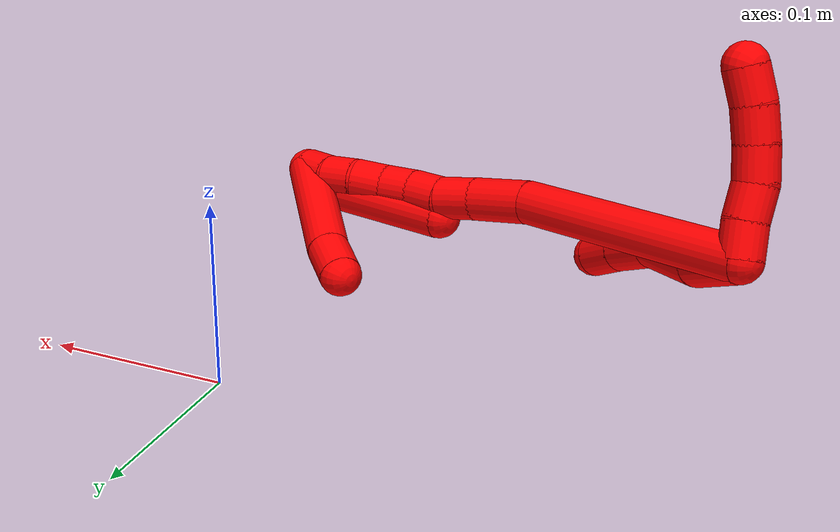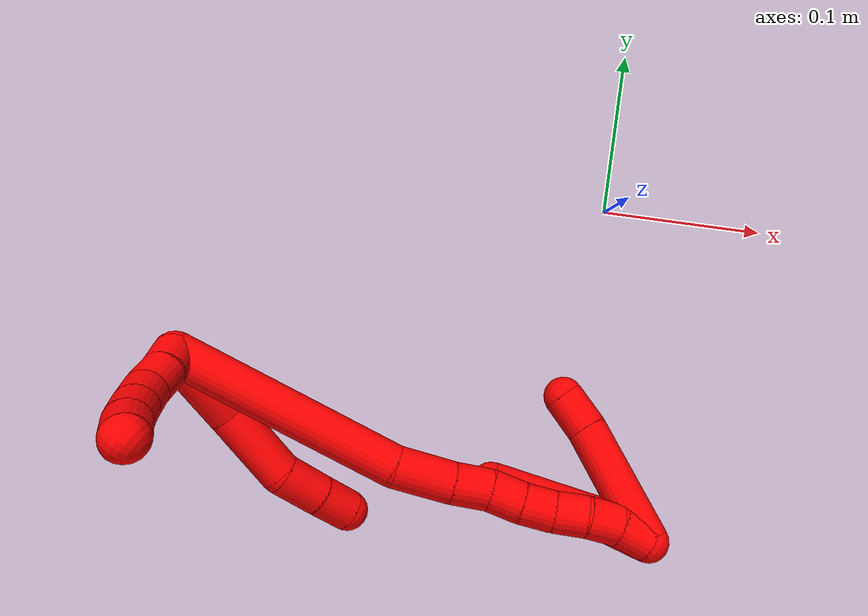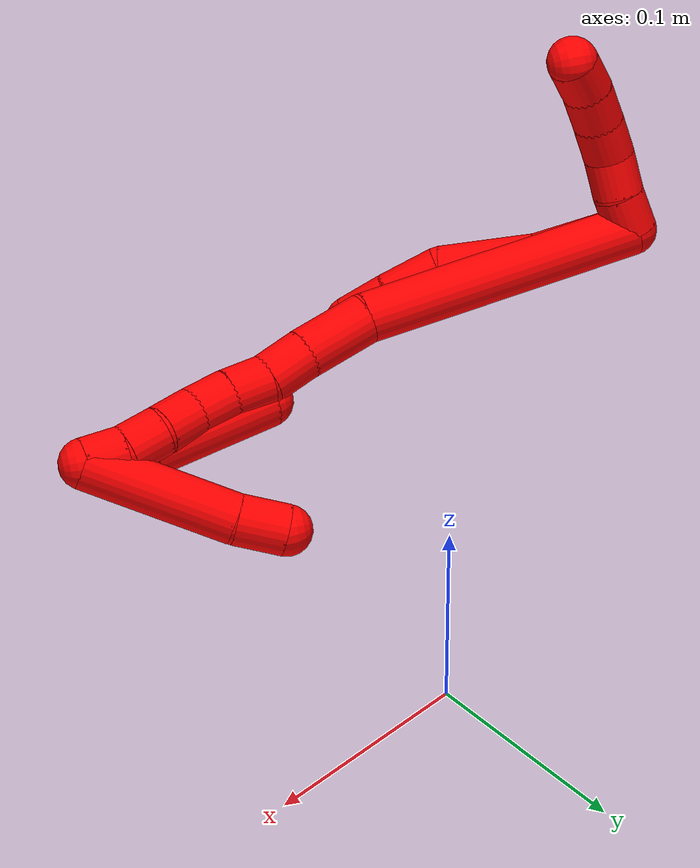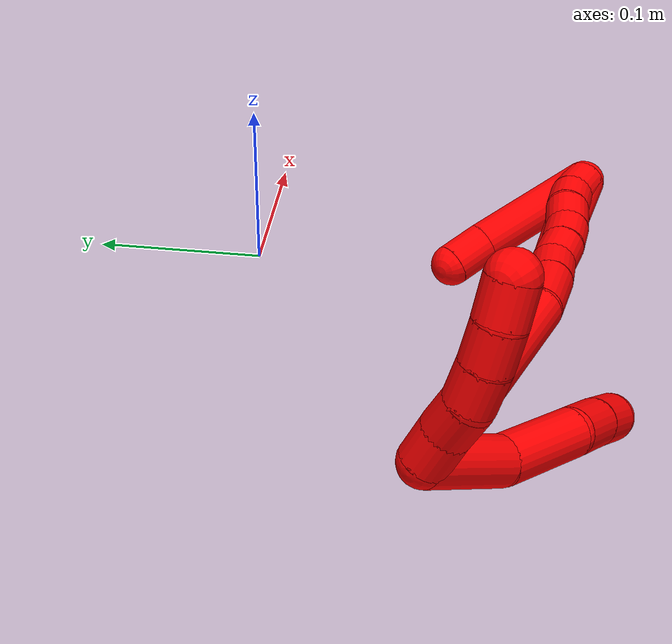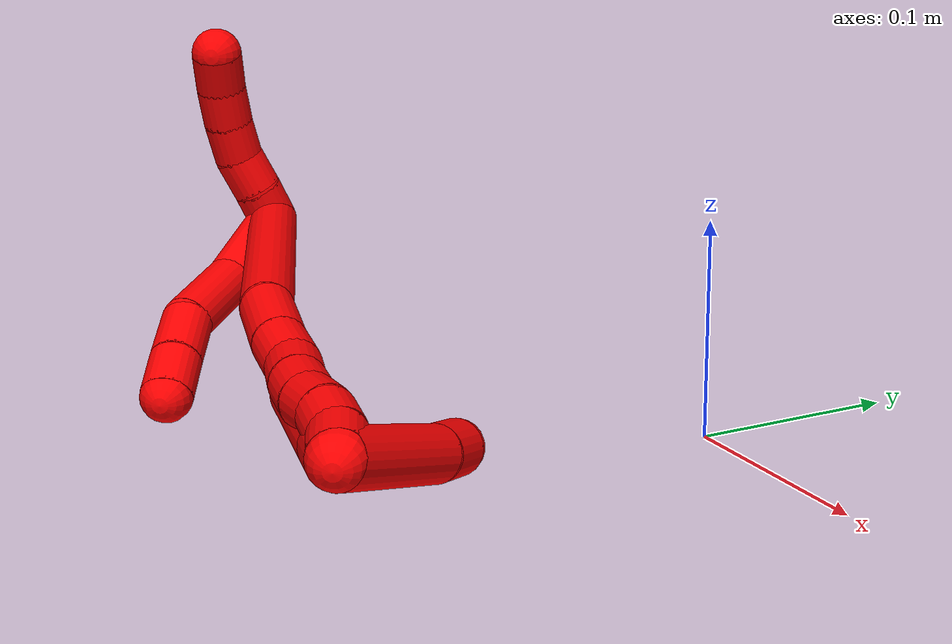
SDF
<sdf version="1.7">
 <world name="default">
  <model name="2">
   <static>0</static>
   <link name="2">
    <collision name="collision-cylinder-e_1_2_8">
     <pose>-0.012496 0.001239 -0.021786 -3.08479 -0.520089 2.92886</pose>
     <geometry><cylinder><radius>0.0125</radius><length>0.050291</length></cylinder></geometry>
     <surface>
      <friction><ode><mu>1.16</mu><mu2>1.16</mu2><slip1>0</slip1><slip2>0</slip2></ode></friction>
      <contact><ode><kp>1e+06</kp><kd>1</kd><max_vel>0</max_vel><min_depth>0.001</min_depth></ode></contact>
     </surface>
    </collision>
    <visual name="visual-cylinder-e_1_2_8">
     <pose>-0.012496 0.001239 -0.021786 -3.08479 -0.520089 2.92886</pose>
     <geometry><cylinder><radius>0.0125</radius><length>0.050291</length></cylinder></geometry>
     <material><ambient>1 0 0 1</ambient></material>
    </visual>
    <collision name="collision-cylinder-e_2_8_9">
     <pose>-0.031151 0.000311 -0.066778 3.04848 -0.258321 -2.45281</pose>
     <geometry><cylinder><radius>0.0125</radius><length>0.048216</length></cylinder></geometry>
     <surface>
      <friction><ode><mu>1.16</mu><mu2>1.16</mu2><slip1>0</slip1><slip2>0</slip2></ode></friction>
      <contact><ode><kp>1e+06</kp><kd>1</kd><max_vel>0</max_vel><min_depth>0.001</min_depth></ode></contact>
     </surface>
    </collision>
    <visual name="visual-cylinder-e_2_8_9">
     <pose>-0.031151 0.000311 -0.066778 3.04848 -0.258321 -2.45281</pose>
     <geometry><cylinder><radius>0.0125</radius><length>0.048216</length></cylinder></geometry>
     <material><ambient>1 0 0 1</ambient></material>
    </visual>
    <collision name="collision-cylinder-e_3_9_10">
     <pose>-0.041061 0.001758 -0.103139 -2.87342 -0.26833 1.57137</pose>
     <geometry><cylinder><radius>0.0125</radius><length>0.028295</length></cylinder></geometry>
     <surface>
      <friction><ode><mu>1.16</mu><mu2>1.16</mu2><slip1>0</slip1><slip2>0</slip2></ode></friction>
      <contact><ode><kp>1e+06</kp><kd>1</kd><max_vel>0</max_vel><min_depth>0.001</min_depth></ode></contact>
     </surface>
    </collision>
    <visual name="visual-cylinder-e_3_9_10">
     <pose>-0.041061 0.001758 -0.103139 -2.87342 -0.26833 1.57137</pose>
     <geometry><cylinder><radius>0.0125</radius><length>0.028295</length></cylinder></geometry>
     <material><ambient>1 0 0 1</ambient></material>
    </visual>
    <collision name="collision-cylinder-e_4_10_6">
     <pose>-0.048323 0.008775 -0.126811 -2.82875 -0.30757 1.55353</pose>
     <geometry><cylinder><radius>0.0125</radius><length>0.023198</length></cylinder></geometry>
     <surface>
      <friction><ode><mu>1.16</mu><mu2>1.16</mu2><slip1>0</slip1><slip2>0</slip2></ode></friction>
      <contact><ode><kp>1e+06</kp><kd>1</kd><max_vel>0</max_vel><min_depth>0.001</min_depth></ode></contact>
     </surface>
    </collision>
    <visual name="visual-cylinder-e_4_10_6">
     <pose>-0.048323 0.008775 -0.126811 -2.82875 -0.30757 1.55353</pose>
     <geometry><cylinder><radius>0.0125</radius><length>0.023198</length></cylinder></geometry>
     <material><ambient>1 0 0 1</ambient></material>
    </visual>
    <collision name="collision-cylinder-e_1_2_11">
     <pose>0.004374 -0.008739 -0.002122 1.80904 0.452714 0.569912</pose>
     <geometry><cylinder><radius>0.0125</radius><length>0.02</length></cylinder></geometry>
     <surface>
      <friction><ode><mu>1.16</mu><mu2>1.16</mu2><slip1>0</slip1><slip2>0</slip2></ode></friction>
      <contact><ode><kp>1e+06</kp><kd>1</kd><max_vel>0</max_vel><min_depth>0.001</min_depth></ode></contact>
     </surface>
    </collision>
    <visual name="visual-cylinder-e_1_2_11">
     <pose>0.004374 -0.008739 -0.002122 1.80904 0.452714 0.569912</pose>
     <geometry><cylinder><radius>0.0125</radius><length>0.02</length></cylinder></geometry>
     <material><ambient>1 0 0 1</ambient></material>
    </visual>
    <collision name="collision-cylinder-e_2_11_12">
     <pose>0.012543 -0.026673 -0.005266 1.68139 0.38923 0.433504</pose>
     <geometry><cylinder><radius>0.0125</radius><length>0.02</length></cylinder></geometry>
     <surface>
      <friction><ode><mu>1.16</mu><mu2>1.16</mu2><slip1>0</slip1><slip2>0</slip2></ode></friction>
      <contact><ode><kp>1e+06</kp><kd>1</kd><max_vel>0</max_vel><min_depth>0.001</min_depth></ode></contact>
     </surface>
    </collision>
    <visual name="visual-cylinder-e_2_11_12">
     <pose>0.012543 -0.026673 -0.005266 1.68139 0.38923 0.433504</pose>
     <geometry><cylinder><radius>0.0125</radius><length>0.02</length></cylinder></geometry>
     <material><ambient>1 0 0 1</ambient></material>
    </visual>
    <collision name="collision-cylinder-e_3_12_13">
     <pose>0.022259 -0.043671 -0.0083 1.82335 0.633763 0.800864</pose>
     <geometry><cylinder><radius>0.0125</radius><length>0.02</length></cylinder></geometry>
     <surface>
      <friction><ode><mu>1.16</mu><mu2>1.16</mu2><slip1>0</slip1><slip2>0</slip2></ode></friction>
      <contact><ode><kp>1e+06</kp><kd>1</kd><max_vel>0</max_vel><min_depth>0.001</min_depth></ode></contact>
     </surface>
    </collision>
    <visual name="visual-cylinder-e_3_12_13">
     <pose>0.022259 -0.043671 -0.0083 1.82335 0.633763 0.800864</pose>
     <geometry><cylinder><radius>0.0125</radius><length>0.02</length></cylinder></geometry>
     <material><ambient>1 0 0 1</ambient></material>
    </visual>
    <collision name="collision-cylinder-e_4_13_14">
     <pose>0.034772 -0.058623 -0.012647 1.88626 0.719516 0.956526</pose>
     <geometry><cylinder><radius>0.0125</radius><length>0.02</length></cylinder></geometry>
     <surface>
      <friction><ode><mu>1.16</mu><mu2>1.16</mu2><slip1>0</slip1><slip2>0</slip2></ode></friction>
      <contact><ode><kp>1e+06</kp><kd>1</kd><max_vel>0</max_vel><min_depth>0.001</min_depth></ode></contact>
     </surface>
    </collision>
    <visual name="visual-cylinder-e_4_13_14">
     <pose>0.034772 -0.058623 -0.012647 1.88626 0.719516 0.956526</pose>
     <geometry><cylinder><radius>0.0125</radius><length>0.02</length></cylinder></geometry>
     <material><ambient>1 0 0 1</ambient></material>
    </visual>
    <collision name="collision-cylinder-e_5_14_5">
     <pose>0.048414 -0.072029 -0.018318 2.06089 0.782725 1.20505</pose>
     <geometry><cylinder><radius>0.0125</radius><length>0.02</length></cylinder></geometry>
     <surface>
      <friction><ode><mu>1.16</mu><mu2>1.16</mu2><slip1>0</slip1><slip2>0</slip2></ode></friction>
      <contact><ode><kp>1e+06</kp><kd>1</kd><max_vel>0</max_vel><min_depth>0.001</min_depth></ode></contact>
     </surface>
    </collision>
    <visual name="visual-cylinder-e_5_14_5">
     <pose>0.048414 -0.072029 -0.018318 2.06089 0.782725 1.20505</pose>
     <geometry><cylinder><radius>0.0125</radius><length>0.02</length></cylinder></geometry>
     <material><ambient>1 0 0 1</ambient></material>
    </visual>
    <collision name="collision-cylinder-e_1_2_15">
     <pose>0.007282 0.009302 -0.069509 -3.00856 0.103469 -1.3215</pose>
     <geometry><cylinder><radius>0.0125</radius><length>0.141011</length></cylinder></geometry>
     <surface>
      <friction><ode><mu>1.16</mu><mu2>1.16</mu2><slip1>0</slip1><slip2>0</slip2></ode></friction>
      <contact><ode><kp>1e+06</kp><kd>1</kd><max_vel>0</max_vel><min_depth>0.001</min_depth></ode></contact>
     </surface>
    </collision>
    <visual name="visual-cylinder-e_1_2_15">
     <pose>0.007282 0.009302 -0.069509 -3.00856 0.103469 -1.3215</pose>
     <geometry><cylinder><radius>0.0125</radius><length>0.141011</length></cylinder></geometry>
     <material><ambient>1 0 0 1</ambient></material>
    </visual>
    <collision name="collision-cylinder-e_2_15_16">
     <pose>0.016962 0.0244 -0.155517 -2.80379 0.136274 -0.761328</pose>
     <geometry><cylinder><radius>0.0125</radius><length>0.035303</length></cylinder></geometry>
     <surface>
      <friction><ode><mu>1.16</mu><mu2>1.16</mu2><slip1>0</slip1><slip2>0</slip2></ode></friction>
      <contact><ode><kp>1e+06</kp><kd>1</kd><max_vel>0</max_vel><min_depth>0.001</min_depth></ode></contact>
     </surface>
    </collision>
    <visual name="visual-cylinder-e_2_15_16">
     <pose>0.016962 0.0244 -0.155517 -2.80379 0.136274 -0.761328</pose>
     <geometry><cylinder><radius>0.0125</radius><length>0.035303</length></cylinder></geometry>
     <material><ambient>1 0 0 1</ambient></material>
    </visual>
    <collision name="collision-cylinder-e_3_16_17">
     <pose>0.021616 0.034688 -0.182412 -2.73368 0.196644 -0.890001</pose>
     <geometry><cylinder><radius>0.0125</radius><length>0.023095</length></cylinder></geometry>
     <surface>
      <friction><ode><mu>1.16</mu><mu2>1.16</mu2><slip1>0</slip1><slip2>0</slip2></ode></friction>
      <contact><ode><kp>1e+06</kp><kd>1</kd><max_vel>0</max_vel><min_depth>0.001</min_depth></ode></contact>
     </surface>
    </collision>
    <visual name="visual-cylinder-e_3_16_17">
     <pose>0.021616 0.034688 -0.182412 -2.73368 0.196644 -0.890001</pose>
     <geometry><cylinder><radius>0.0125</radius><length>0.023095</length></cylinder></geometry>
     <material><ambient>1 0 0 1</ambient></material>
    </visual>
    <collision name="collision-cylinder-e_4_17_18">
     <pose>0.025809 0.04101 -0.202582 -2.95662 0.192348 -1.61014</pose>
     <geometry><cylinder><radius>0.0125</radius><length>0.020261</length></cylinder></geometry>
     <surface>
      <friction><ode><mu>1.16</mu><mu2>1.16</mu2><slip1>0</slip1><slip2>0</slip2></ode></friction>
      <contact><ode><kp>1e+06</kp><kd>1</kd><max_vel>0</max_vel><min_depth>0.001</min_depth></ode></contact>
     </surface>
    </collision>
    <visual name="visual-cylinder-e_4_17_18">
     <pose>0.025809 0.04101 -0.202582 -2.95662 0.192348 -1.61014</pose>
     <geometry><cylinder><radius>0.0125</radius><length>0.020261</length></cylinder></geometry>
     <material><ambient>1 0 0 1</ambient></material>
    </visual>
    <collision name="collision-cylinder-e_5_18_19">
     <pose>0.030273 0.045621 -0.221656 -2.85085 0.254724 -1.43728</pose>
     <geometry><cylinder><radius>0.0125</radius><length>0.020061</length></cylinder></geometry>
     <surface>
      <friction><ode><mu>1.16</mu><mu2>1.16</mu2><slip1>0</slip1><slip2>0</slip2></ode></friction>
      <contact><ode><kp>1e+06</kp><kd>1</kd><max_vel>0</max_vel><min_depth>0.001</min_depth></ode></contact>
     </surface>
    </collision>
    <visual name="visual-cylinder-e_5_18_19">
     <pose>0.030273 0.045621 -0.221656 -2.85085 0.254724 -1.43728</pose>
     <geometry><cylinder><radius>0.0125</radius><length>0.020061</length></cylinder></geometry>
     <material><ambient>1 0 0 1</ambient></material>
    </visual>
    <collision name="collision-cylinder-e_6_19_20">
     <pose>0.036789 0.051502 -0.239714 -2.80159 0.405516 -1.75018</pose>
     <geometry><cylinder><radius>0.0125</radius><length>0.02022</length></cylinder></geometry>
     <surface>
      <friction><ode><mu>1.16</mu><mu2>1.16</mu2><slip1>0</slip1><slip2>0</slip2></ode></friction>
      <contact><ode><kp>1e+06</kp><kd>1</kd><max_vel>0</max_vel><min_depth>0.001</min_depth></ode></contact>
     </surface>
    </collision>
    <visual name="visual-cylinder-e_6_19_20">
     <pose>0.036789 0.051502 -0.239714 -2.80159 0.405516 -1.75018</pose>
     <geometry><cylinder><radius>0.0125</radius><length>0.02022</length></cylinder></geometry>
     <material><ambient>1 0 0 1</ambient></material>
    </visual>
    <collision name="collision-cylinder-e_7_20_21">
     <pose>0.042914 0.057653 -0.257767 -2.8242 0.215011 -1.18659</pose>
     <geometry><cylinder><radius>0.0125</radius><length>0.020029</length></cylinder></geometry>
     <surface>
      <friction><ode><mu>1.16</mu><mu2>1.16</mu2><slip1>0</slip1><slip2>0</slip2></ode></friction>
      <contact><ode><kp>1e+06</kp><kd>1</kd><max_vel>0</max_vel><min_depth>0.001</min_depth></ode></contact>
     </surface>
    </collision>
    <visual name="visual-cylinder-e_7_20_21">
     <pose>0.042914 0.057653 -0.257767 -2.8242 0.215011 -1.18659</pose>
     <geometry><cylinder><radius>0.0125</radius><length>0.020029</length></cylinder></geometry>
     <material><ambient>1 0 0 1</ambient></material>
    </visual>
    <collision name="collision-cylinder-e_8_21_1">
     <pose>0.045967 0.061789 -0.276971 -3.03285 0.091649 -1.40029</pose>
     <geometry><cylinder><radius>0.0125</radius><length>0.020019</length></cylinder></geometry>
     <surface>
      <friction><ode><mu>1.16</mu><mu2>1.16</mu2><slip1>0</slip1><slip2>0</slip2></ode></friction>
      <contact><ode><kp>1e+06</kp><kd>1</kd><max_vel>0</max_vel><min_depth>0.001</min_depth></ode></contact>
     </surface>
    </collision>
    <visual name="visual-cylinder-e_8_21_1">
     <pose>0.045967 0.061789 -0.276971 -3.03285 0.091649 -1.40029</pose>
     <geometry><cylinder><radius>0.0125</radius><length>0.020019</length></cylinder></geometry>
     <material><ambient>1 0 0 1</ambient></material>
    </visual>
    <collision name="collision-cylinder-e_1_1_22">
     <pose>0.04678 0.082651 -0.254722 -0.551439 -0.00272 0.00077</pose>
     <geometry><cylinder><radius>0.0125</radius><length>0.07551</length></cylinder></geometry>
     <surface>
      <friction><ode><mu>1.16</mu><mu2>1.16</mu2><slip1>0</slip1><slip2>0</slip2></ode></friction>
      <contact><ode><kp>1e+06</kp><kd>1</kd><max_vel>0</max_vel><min_depth>0.001</min_depth></ode></contact>
     </surface>
    </collision>
    <visual name="visual-cylinder-e_1_1_22">
     <pose>0.04678 0.082651 -0.254722 -0.551439 -0.00272 0.00077</pose>
     <geometry><cylinder><radius>0.0125</radius><length>0.07551</length></cylinder></geometry>
     <material><ambient>1 0 0 1</ambient></material>
    </visual>
    <collision name="collision-cylinder-e_2_22_4">
     <pose>0.04628 0.107321 -0.211344 -0.411015 -0.03248 0.006771</pose>
     <geometry><cylinder><radius>0.0125</radius><length>0.02449</length></cylinder></geometry>
     <surface>
      <friction><ode><mu>1.16</mu><mu2>1.16</mu2><slip1>0</slip1><slip2>0</slip2></ode></friction>
      <contact><ode><kp>1e+06</kp><kd>1</kd><max_vel>0</max_vel><min_depth>0.001</min_depth></ode></contact>
     </surface>
    </collision>
    <visual name="visual-cylinder-e_2_22_4">
     <pose>0.04628 0.107321 -0.211344 -0.411015 -0.03248 0.006771</pose>
     <geometry><cylinder><radius>0.0125</radius><length>0.02449</length></cylinder></geometry>
     <material><ambient>1 0 0 1</ambient></material>
    </visual>
    <collision name="collision-cylinder-e_1_1_23">
     <pose>0.040892 0.062795 -0.271554 0.004931 -0.37265 -0.000929</pose>
     <geometry><cylinder><radius>0.0125</radius><length>0.032912</length></cylinder></geometry>
     <surface>
      <friction><ode><mu>1.16</mu><mu2>1.16</mu2><slip1>0</slip1><slip2>0</slip2></ode></friction>
      <contact><ode><kp>1e+06</kp><kd>1</kd><max_vel>0</max_vel><min_depth>0.001</min_depth></ode></contact>
     </surface>
    </collision>
    <visual name="visual-cylinder-e_1_1_23">
     <pose>0.040892 0.062795 -0.271554 0.004931 -0.37265 -0.000929</pose>
     <geometry><cylinder><radius>0.0125</radius><length>0.032912</length></cylinder></geometry>
     <material><ambient>1 0 0 1</ambient></material>
    </visual>
    <collision name="collision-cylinder-e_2_23_3">
     <pose>0.025615 0.055679 -0.224772 0.220195 -0.280471 -0.031207</pose>
     <geometry><cylinder><radius>0.0125</radius><length>0.067088</length></cylinder></geometry>
     <surface>
      <friction><ode><mu>1.16</mu><mu2>1.16</mu2><slip1>0</slip1><slip2>0</slip2></ode></friction>
      <contact><ode><kp>1e+06</kp><kd>1</kd><max_vel>0</max_vel><min_depth>0.001</min_depth></ode></contact>
     </surface>
    </collision>
    <visual name="visual-cylinder-e_2_23_3">
     <pose>0.025615 0.055679 -0.224772 0.220195 -0.280471 -0.031207</pose>
     <geometry><cylinder><radius>0.0125</radius><length>0.067088</length></cylinder></geometry>
     <material><ambient>1 0 0 1</ambient></material>
    </visual>
    <collision name="collision-sphere-3">
     <pose>0.01633 0.048639 -0.193317 0 -0 0</pose>
     <geometry><sphere><radius>0.0125</radius></sphere></geometry>
     <surface>
      <friction><ode><mu>1.16</mu><mu2>1.16</mu2><slip1>0</slip1><slip2>0</slip2></ode></friction>
      <contact><ode><kp>1e+06</kp><kd>1</kd><max_vel>0</max_vel><min_depth>0.001</min_depth></ode></contact>
     </surface>
    </collision>
    <visual name="visual-sphere-3">
     <pose>0.01633 0.048639 -0.193317 0 -0 0</pose>
     <geometry><sphere><radius>0.0125</radius></sphere></geometry>
     <material><ambient>1 0 0 1</ambient></material>
    </visual>
    <collision name="collision-sphere-23">
     <pose>0.0349 0.062719 -0.256227 0 -0 0</pose>
     <geometry><sphere><radius>0.0125</radius></sphere></geometry>
     <surface>
      <friction><ode><mu>1.16</mu><mu2>1.16</mu2><slip1>0</slip1><slip2>0</slip2></ode></friction>
      <contact><ode><kp>1e+06</kp><kd>1</kd><max_vel>0</max_vel><min_depth>0.001</min_depth></ode></contact>
     </surface>
    </collision>
    <visual name="visual-sphere-23">
     <pose>0.0349 0.062719 -0.256227 0 -0 0</pose>
     <geometry><sphere><radius>0.0125</radius></sphere></geometry>
     <material><ambient>1 0 0 1</ambient></material>
    </visual>
    <collision name="collision-sphere-4">
     <pose>0.045882 0.112211 -0.200125 0 -0 0</pose>
     <geometry><sphere><radius>0.0125</radius></sphere></geometry>
     <surface>
      <friction><ode><mu>1.16</mu><mu2>1.16</mu2><slip1>0</slip1><slip2>0</slip2></ode></friction>
      <contact><ode><kp>1e+06</kp><kd>1</kd><max_vel>0</max_vel><min_depth>0.001</min_depth></ode></contact>
     </surface>
    </collision>
    <visual name="visual-sphere-4">
     <pose>0.045882 0.112211 -0.200125 0 -0 0</pose>
     <geometry><sphere><radius>0.0125</radius></sphere></geometry>
     <material><ambient>1 0 0 1</ambient></material>
    </visual>
    <collision name="collision-sphere-22">
     <pose>0.046678 0.102431 -0.222563 0 -0 0</pose>
     <geometry><sphere><radius>0.0125</radius></sphere></geometry>
     <surface>
      <friction><ode><mu>1.16</mu><mu2>1.16</mu2><slip1>0</slip1><slip2>0</slip2></ode></friction>
      <contact><ode><kp>1e+06</kp><kd>1</kd><max_vel>0</max_vel><min_depth>0.001</min_depth></ode></contact>
     </surface>
    </collision>
    <visual name="visual-sphere-22">
     <pose>0.046678 0.102431 -0.222563 0 -0 0</pose>
     <geometry><sphere><radius>0.0125</radius></sphere></geometry>
     <material><ambient>1 0 0 1</ambient></material>
    </visual>
    <collision name="collision-sphere-1">
     <pose>0.046883 0.062871 -0.28688 0 -0 0</pose>
     <geometry><sphere><radius>0.0125</radius></sphere></geometry>
     <surface>
      <friction><ode><mu>1.16</mu><mu2>1.16</mu2><slip1>0</slip1><slip2>0</slip2></ode></friction>
      <contact><ode><kp>1e+06</kp><kd>1</kd><max_vel>0</max_vel><min_depth>0.001</min_depth></ode></contact>
     </surface>
    </collision>
    <visual name="visual-sphere-1">
     <pose>0.046883 0.062871 -0.28688 0 -0 0</pose>
     <geometry><sphere><radius>0.0125</radius></sphere></geometry>
     <material><ambient>1 0 0 1</ambient></material>
    </visual>
    <collision name="collision-sphere-21">
     <pose>0.045051 0.060707 -0.267063 0 -0 0</pose>
     <geometry><sphere><radius>0.0125</radius></sphere></geometry>
     <surface>
      <friction><ode><mu>1.16</mu><mu2>1.16</mu2><slip1>0</slip1><slip2>0</slip2></ode></friction>
      <contact><ode><kp>1e+06</kp><kd>1</kd><max_vel>0</max_vel><min_depth>0.001</min_depth></ode></contact>
     </surface>
    </collision>
    <visual name="visual-sphere-21">
     <pose>0.045051 0.060707 -0.267063 0 -0 0</pose>
     <geometry><sphere><radius>0.0125</radius></sphere></geometry>
     <material><ambient>1 0 0 1</ambient></material>
    </visual>
    <collision name="collision-sphere-11">
     <pose>0.008748 -0.017477 -0.004244 0 -0 0</pose>
     <geometry><sphere><radius>0.0125</radius></sphere></geometry>
     <surface>
      <friction><ode><mu>1.16</mu><mu2>1.16</mu2><slip1>0</slip1><slip2>0</slip2></ode></friction>
      <contact><ode><kp>1e+06</kp><kd>1</kd><max_vel>0</max_vel><min_depth>0.001</min_depth></ode></contact>
     </surface>
    </collision>
    <visual name="visual-sphere-11">
     <pose>0.008748 -0.017477 -0.004244 0 -0 0</pose>
     <geometry><sphere><radius>0.0125</radius></sphere></geometry>
     <material><ambient>1 0 0 1</ambient></material>
    </visual>
    <collision name="collision-sphere-6">
     <pose>-0.051834 0.012177 -0.137329 0 -0 0</pose>
     <geometry><sphere><radius>0.0125</radius></sphere></geometry>
     <surface>
      <friction><ode><mu>1.16</mu><mu2>1.16</mu2><slip1>0</slip1><slip2>0</slip2></ode></friction>
      <contact><ode><kp>1e+06</kp><kd>1</kd><max_vel>0</max_vel><min_depth>0.001</min_depth></ode></contact>
     </surface>
    </collision>
    <visual name="visual-sphere-6">
     <pose>-0.051834 0.012177 -0.137329 0 -0 0</pose>
     <geometry><sphere><radius>0.0125</radius></sphere></geometry>
     <material><ambient>1 0 0 1</ambient></material>
    </visual>
    <collision name="collision-sphere-10">
     <pose>-0.044811 0.005373 -0.116293 0 -0 0</pose>
     <geometry><sphere><radius>0.0125</radius></sphere></geometry>
     <surface>
      <friction><ode><mu>1.16</mu><mu2>1.16</mu2><slip1>0</slip1><slip2>0</slip2></ode></friction>
      <contact><ode><kp>1e+06</kp><kd>1</kd><max_vel>0</max_vel><min_depth>0.001</min_depth></ode></contact>
     </surface>
    </collision>
    <visual name="visual-sphere-10">
     <pose>-0.044811 0.005373 -0.116293 0 -0 0</pose>
     <geometry><sphere><radius>0.0125</radius></sphere></geometry>
     <material><ambient>1 0 0 1</ambient></material>
    </visual>
    <collision name="collision-sphere-9">
     <pose>-0.03731 -0.001856 -0.089985 0 -0 0</pose>
     <geometry><sphere><radius>0.0125</radius></sphere></geometry>
     <surface>
      <friction><ode><mu>1.16</mu><mu2>1.16</mu2><slip1>0</slip1><slip2>0</slip2></ode></friction>
      <contact><ode><kp>1e+06</kp><kd>1</kd><max_vel>0</max_vel><min_depth>0.001</min_depth></ode></contact>
     </surface>
    </collision>
    <visual name="visual-sphere-9">
     <pose>-0.03731 -0.001856 -0.089985 0 -0 0</pose>
     <geometry><sphere><radius>0.0125</radius></sphere></geometry>
     <material><ambient>1 0 0 1</ambient></material>
    </visual>
    <collision name="collision-sphere-2">
     <geometry><sphere><radius>0.0125</radius></sphere></geometry>
     <surface>
      <friction><ode><mu>1.16</mu><mu2>1.16</mu2><slip1>0</slip1><slip2>0</slip2></ode></friction>
      <contact><ode><kp>1e+06</kp><kd>1</kd><max_vel>0</max_vel><min_depth>0.001</min_depth></ode></contact>
     </surface>
    </collision>
    <visual name="visual-sphere-2">
     <geometry><sphere><radius>0.0125</radius></sphere></geometry>
     <material><ambient>1 0 0 1</ambient></material>
    </visual>
    <collision name="collision-sphere-19">
     <pose>0.032801 0.048404 -0.230955 0 -0 0</pose>
     <geometry><sphere><radius>0.0125</radius></sphere></geometry>
     <surface>
      <friction><ode><mu>1.16</mu><mu2>1.16</mu2><slip1>0</slip1><slip2>0</slip2></ode></friction>
      <contact><ode><kp>1e+06</kp><kd>1</kd><max_vel>0</max_vel><min_depth>0.001</min_depth></ode></contact>
     </surface>
    </collision>
    <visual name="visual-sphere-19">
     <pose>0.032801 0.048404 -0.230955 0 -0 0</pose>
     <geometry><sphere><radius>0.0125</radius></sphere></geometry>
     <material><ambient>1 0 0 1</ambient></material>
    </visual>
    <collision name="collision-sphere-8">
     <pose>-0.024993 0.002478 -0.043571 0 -0 0</pose>
     <geometry><sphere><radius>0.0125</radius></sphere></geometry>
     <surface>
      <friction><ode><mu>1.16</mu><mu2>1.16</mu2><slip1>0</slip1><slip2>0</slip2></ode></friction>
      <contact><ode><kp>1e+06</kp><kd>1</kd><max_vel>0</max_vel><min_depth>0.001</min_depth></ode></contact>
     </surface>
    </collision>
    <visual name="visual-sphere-8">
     <pose>-0.024993 0.002478 -0.043571 0 -0 0</pose>
     <geometry><sphere><radius>0.0125</radius></sphere></geometry>
     <material><ambient>1 0 0 1</ambient></material>
    </visual>
    <collision name="collision-sphere-12">
     <pose>0.016338 -0.035868 -0.006287 0 -0 0</pose>
     <geometry><sphere><radius>0.0125</radius></sphere></geometry>
     <surface>
      <friction><ode><mu>1.16</mu><mu2>1.16</mu2><slip1>0</slip1><slip2>0</slip2></ode></friction>
      <contact><ode><kp>1e+06</kp><kd>1</kd><max_vel>0</max_vel><min_depth>0.001</min_depth></ode></contact>
     </surface>
    </collision>
    <visual name="visual-sphere-12">
     <pose>0.016338 -0.035868 -0.006287 0 -0 0</pose>
     <geometry><sphere><radius>0.0125</radius></sphere></geometry>
     <material><ambient>1 0 0 1</ambient></material>
    </visual>
    <collision name="collision-sphere-13">
     <pose>0.028181 -0.051473 -0.010314 0 -0 0</pose>
     <geometry><sphere><radius>0.0125</radius></sphere></geometry>
     <surface>
      <friction><ode><mu>1.16</mu><mu2>1.16</mu2><slip1>0</slip1><slip2>0</slip2></ode></friction>
      <contact><ode><kp>1e+06</kp><kd>1</kd><max_vel>0</max_vel><min_depth>0.001</min_depth></ode></contact>
     </surface>
    </collision>
    <visual name="visual-sphere-13">
     <pose>0.028181 -0.051473 -0.010314 0 -0 0</pose>
     <geometry><sphere><radius>0.0125</radius></sphere></geometry>
     <material><ambient>1 0 0 1</ambient></material>
    </visual>
    <collision name="collision-sphere-14">
     <pose>0.041362 -0.065773 -0.014981 0 -0 0</pose>
     <geometry><sphere><radius>0.0125</radius></sphere></geometry>
     <surface>
      <friction><ode><mu>1.16</mu><mu2>1.16</mu2><slip1>0</slip1><slip2>0</slip2></ode></friction>
      <contact><ode><kp>1e+06</kp><kd>1</kd><max_vel>0</max_vel><min_depth>0.001</min_depth></ode></contact>
     </surface>
    </collision>
    <visual name="visual-sphere-14">
     <pose>0.041362 -0.065773 -0.014981 0 -0 0</pose>
     <geometry><sphere><radius>0.0125</radius></sphere></geometry>
     <material><ambient>1 0 0 1</ambient></material>
    </visual>
    <collision name="collision-sphere-5">
     <pose>0.055466 -0.078284 -0.021655 0 -0 0</pose>
     <geometry><sphere><radius>0.0125</radius></sphere></geometry>
     <surface>
      <friction><ode><mu>1.16</mu><mu2>1.16</mu2><slip1>0</slip1><slip2>0</slip2></ode></friction>
      <contact><ode><kp>1e+06</kp><kd>1</kd><max_vel>0</max_vel><min_depth>0.001</min_depth></ode></contact>
     </surface>
    </collision>
    <visual name="visual-sphere-5">
     <pose>0.055466 -0.078284 -0.021655 0 -0 0</pose>
     <geometry><sphere><radius>0.0125</radius></sphere></geometry>
     <material><ambient>1 0 0 1</ambient></material>
    </visual>
    <collision name="collision-sphere-15">
     <pose>0.014564 0.018604 -0.139017 0 -0 0</pose>
     <geometry><sphere><radius>0.0125</radius></sphere></geometry>
     <surface>
      <friction><ode><mu>1.16</mu><mu2>1.16</mu2><slip1>0</slip1><slip2>0</slip2></ode></friction>
      <contact><ode><kp>1e+06</kp><kd>1</kd><max_vel>0</max_vel><min_depth>0.001</min_depth></ode></contact>
     </surface>
    </collision>
    <visual name="visual-sphere-15">
     <pose>0.014564 0.018604 -0.139017 0 -0 0</pose>
     <geometry><sphere><radius>0.0125</radius></sphere></geometry>
     <material><ambient>1 0 0 1</ambient></material>
    </visual>
    <collision name="collision-sphere-16">
     <pose>0.01936 0.030196 -0.172017 0 -0 0</pose>
     <geometry><sphere><radius>0.0125</radius></sphere></geometry>
     <surface>
      <friction><ode><mu>1.16</mu><mu2>1.16</mu2><slip1>0</slip1><slip2>0</slip2></ode></friction>
      <contact><ode><kp>1e+06</kp><kd>1</kd><max_vel>0</max_vel><min_depth>0.001</min_depth></ode></contact>
     </surface>
    </collision>
    <visual name="visual-sphere-16">
     <pose>0.01936 0.030196 -0.172017 0 -0 0</pose>
     <geometry><sphere><radius>0.0125</radius></sphere></geometry>
     <material><ambient>1 0 0 1</ambient></material>
    </visual>
    <collision name="collision-sphere-17">
     <pose>0.023872 0.039181 -0.192808 0 -0 0</pose>
     <geometry><sphere><radius>0.0125</radius></sphere></geometry>
     <surface>
      <friction><ode><mu>1.16</mu><mu2>1.16</mu2><slip1>0</slip1><slip2>0</slip2></ode></friction>
      <contact><ode><kp>1e+06</kp><kd>1</kd><max_vel>0</max_vel><min_depth>0.001</min_depth></ode></contact>
     </surface>
    </collision>
    <visual name="visual-sphere-17">
     <pose>0.023872 0.039181 -0.192808 0 -0 0</pose>
     <geometry><sphere><radius>0.0125</radius></sphere></geometry>
     <material><ambient>1 0 0 1</ambient></material>
    </visual>
    <collision name="collision-sphere-18">
     <pose>0.027746 0.042838 -0.212356 0 -0 0</pose>
     <geometry><sphere><radius>0.0125</radius></sphere></geometry>
     <surface>
      <friction><ode><mu>1.16</mu><mu2>1.16</mu2><slip1>0</slip1><slip2>0</slip2></ode></friction>
      <contact><ode><kp>1e+06</kp><kd>1</kd><max_vel>0</max_vel><min_depth>0.001</min_depth></ode></contact>
     </surface>
    </collision>
    <visual name="visual-sphere-18">
     <pose>0.027746 0.042838 -0.212356 0 -0 0</pose>
     <geometry><sphere><radius>0.0125</radius></sphere></geometry>
     <material><ambient>1 0 0 1</ambient></material>
    </visual>
    <collision name="collision-sphere-20">
     <pose>0.040777 0.0546 -0.248472 0 -0 0</pose>
     <geometry><sphere><radius>0.0125</radius></sphere></geometry>
     <surface>
      <friction><ode><mu>1.16</mu><mu2>1.16</mu2><slip1>0</slip1><slip2>0</slip2></ode></friction>
      <contact><ode><kp>1e+06</kp><kd>1</kd><max_vel>0</max_vel><min_depth>0.001</min_depth></ode></contact>
     </surface>
    </collision>
    <visual name="visual-sphere-20">
     <pose>0.040777 0.0546 -0.248472 0 -0 0</pose>
     <geometry><sphere><radius>0.0125</radius></sphere></geometry>
     <material><ambient>1 0 0 1</ambient></material>
    </visual>
    <inertial>
     <pose>0.01539 0.025281 -0.137528 0 -0 0</pose>
     <mass>0.75</mass>
     <inertia>
      <ixx>-0.000117</ixx>
      <ixy>0</ixy>
      <ixz>0</ixz>
      <iyy>-0.000207</iyy>
      <iyz>0</iyz>
      <izz>-7.9e-05</izz>
     </inertia>
    </inertial>
   </link>
   <pose>-0.239 -0.118135 0.066 -1.48377 -0.828863 0.978803</pose>
  </model>
 </world>
</sdf>
